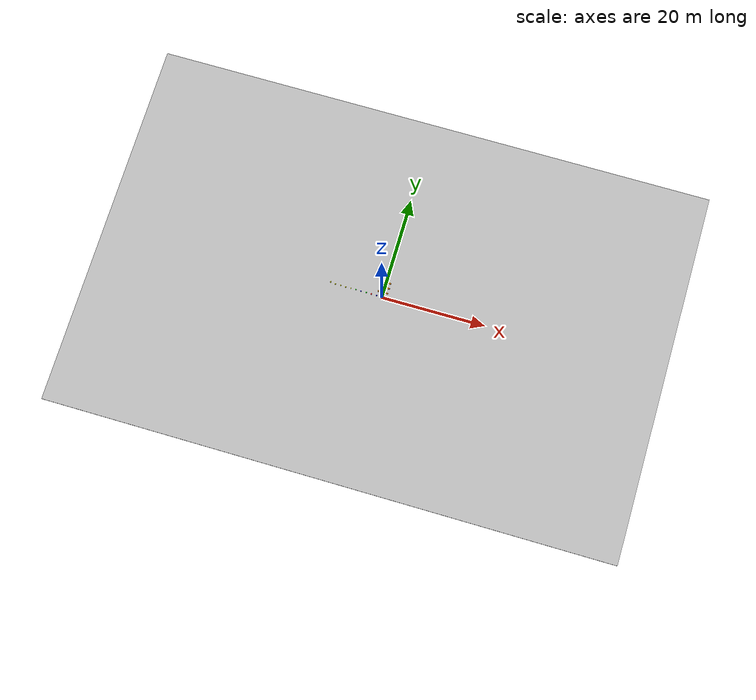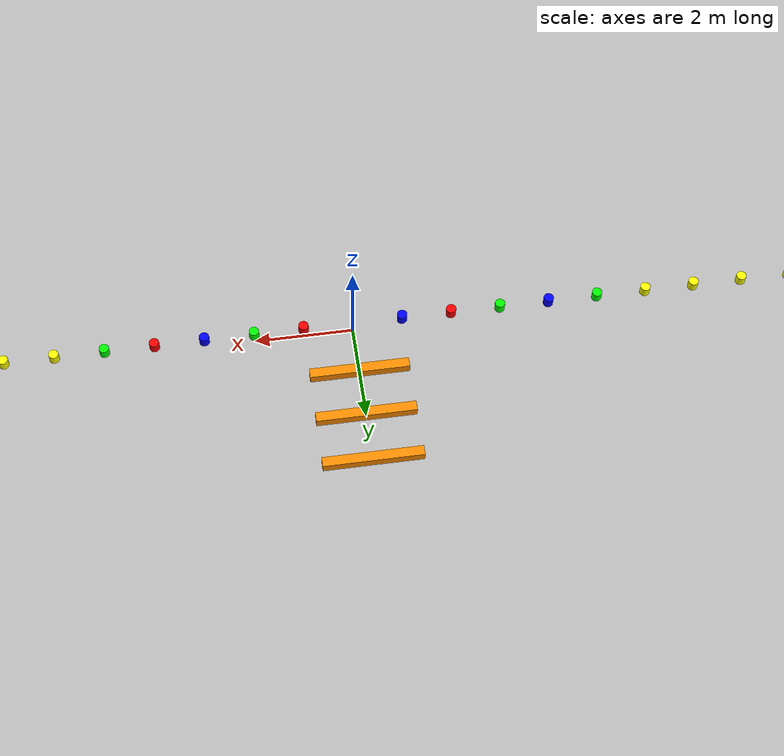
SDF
<sdf version="1.4">
 <world name="default">
  <physics type="ode">
   <max_step_size>0.001</max_step_size>
   <real_time_factor>1</real_time_factor>
   <real_time_update_rate>1000</real_time_update_rate>
   <gravity>0 0 -9.8</gravity>
  </physics>
  <spherical_coordinates>
   <surface_model>EARTH_WGS84</surface_model>
   <latitude_deg>24.4793194</latitude_deg>
   <longitude_deg>54.6105446</longitude_deg>
   <elevation>18</elevation>
   <heading_deg>0</heading_deg>
  </spherical_coordinates>
  <scene><sky><clouds><speed>12</speed></clouds></sky></scene>
  <include><uri>model://sun</uri></include>
  <light name="point_light_0" type="point">
   <pose>22.5 0 3 0 0 0</pose>
   <diffuse>0.5 0.5 0.5 1</diffuse>
   <specular>0.1 0.1 0.1 1</specular>
   <attenuation>
    <range>20</range>
    <constant>0.1</constant>
    <linear>0.1</linear>
    <quadratic>0.01</quadratic>
   </attenuation>
   <cast_shadows>0</cast_shadows>
   <direction>0 0 -1</direction>
  </light>
  <include><uri>model://arena</uri></include>
  <model name="small_cylinder_1">
   <pose>1 0 0.2 0 0 0</pose>
   <include><uri>model://small_cylinder_static_red</uri></include>
   <plugin name="mbzirc_gazebo_treasure_plugin_cylinder_1" filename="libmbzirc_gazebo_treasure_plugin.so">
    <staticObject>true</staticObject>
   </plugin>
  </model>
  <model name="small_cylinder_2">
   <pose>2 0 0.2 0 0 0</pose>
   <include><uri>model://small_cylinder_static_green</uri></include>
   <plugin name="mbzirc_gazebo_treasure_plugin_cylinder_2" filename="libmbzirc_gazebo_treasure_plugin.so">
    <staticObject>true</staticObject>
   </plugin>
  </model>
  <model name="small_cylinder_3">
   <pose>3 0 0.2 0 0 0</pose>
   <include><uri>model://small_cylinder_static_blue</uri></include>
   <plugin name="mbzirc_gazebo_treasure_plugin_cylinder_3" filename="libmbzirc_gazebo_treasure_plugin.so">
    <staticObject>true</staticObject>
   </plugin>
  </model>
  <model name="small_cylinder_4">
   <pose>4 0 0.2 0 0 0</pose>
   <include><uri>model://small_cylinder_static_red</uri></include>
   <plugin name="mbzirc_gazebo_treasure_plugin_cylinder_4" filename="libmbzirc_gazebo_treasure_plugin.so">
    <staticObject>true</staticObject>
   </plugin>
  </model>
  <model name="small_cylinder_5">
   <pose>5 0 0.2 0 0 0</pose>
   <include><uri>model://small_cylinder_static_green</uri></include>
   <plugin name="mbzirc_gazebo_treasure_plugin_cylinder_5" filename="libmbzirc_gazebo_treasure_plugin.so">
    <staticObject>true</staticObject>
   </plugin>
  </model>
  <model name="small_cylinder_6">
   <pose>-1 0 0.2 0 0 0</pose>
   <include><uri>model://small_cylinder_static_blue</uri></include>
   <plugin name="mbzirc_gazebo_treasure_plugin_cylinder_6" filename="libmbzirc_gazebo_treasure_plugin.so">
    <staticObject>true</staticObject>
   </plugin>
  </model>
  <model name="small_cylinder_7">
   <pose>-2 0 0.2 0 0 0</pose>
   <include><uri>model://small_cylinder_static_red</uri></include>
   <plugin name="mbzirc_gazebo_treasure_plugin_cylinder_7" filename="libmbzirc_gazebo_treasure_plugin.so">
    <staticObject>true</staticObject>
   </plugin>
  </model>
  <model name="small_cylinder_8">
   <pose>-3 0 0.2 0 0 0</pose>
   <include><uri>model://small_cylinder_static_green</uri></include>
   <plugin name="mbzirc_gazebo_treasure_plugin_cylinder_8" filename="libmbzirc_gazebo_treasure_plugin.so">
    <staticObject>true</staticObject>
   </plugin>
  </model>
  <model name="small_cylinder_9">
   <pose>-4 0 0.2 0 0 0</pose>
   <include><uri>model://small_cylinder_static_blue</uri></include>
   <plugin name="mbzirc_gazebo_treasure_plugin_cylinder_9" filename="libmbzirc_gazebo_treasure_plugin.so">
    <staticObject>true</staticObject>
   </plugin>
  </model>
  <model name="small_cylinder_10">
   <pose>-5 0 0.2 0 0 0</pose>
   <include><uri>model://small_cylinder_static_green</uri></include>
   <plugin name="mbzirc_gazebo_treasure_plugin_cylinder_10" filename="libmbzirc_gazebo_treasure_plugin.so">
    <staticObject>true</staticObject>
   </plugin>
  </model>
  <model name="small_cylinder_11">
   <pose>6 0 0.2 0 0 0</pose>
   <include><uri>model://small_cylinder_moving</uri></include>
   <plugin name="mbzirc_gazebo_treasure_plugin_cylinder_11" filename="libmbzirc_gazebo_treasure_plugin.so"/>
  </model>
  <model name="small_cylinder_12">
   <pose>7 0 0.2 0 0 0</pose>
   <include><uri>model://small_cylinder_moving</uri></include>
   <plugin name="mbzirc_gazebo_treasure_plugin_cylinder_12" filename="libmbzirc_gazebo_treasure_plugin.so"/>
  </model>
  <model name="small_cylinder_13">
   <pose>8 0 0.2 0 0 0</pose>
   <include><uri>model://small_cylinder_moving</uri></include>
   <plugin name="mbzirc_gazebo_treasure_plugin_cylinder_13" filename="libmbzirc_gazebo_treasure_plugin.so"/>
  </model>
  <model name="small_cylinder_14">
   <pose>9 0 0.2 0 0 0</pose>
   <include><uri>model://small_cylinder_moving</uri></include>
   <plugin name="mbzirc_gazebo_treasure_plugin_cylinder_14" filename="libmbzirc_gazebo_treasure_plugin.so"/>
  </model>
  <model name="small_cylinder_15">
   <pose>10 0 0.2 0 0 0</pose>
   <include><uri>model://small_cylinder_moving</uri></include>
   <plugin name="mbzirc_gazebo_treasure_plugin_cylinder_15" filename="libmbzirc_gazebo_treasure_plugin.so"/>
  </model>
  <model name="small_cylinder_16">
   <pose>-6 0 0.2 0 0 0</pose>
   <include><uri>model://small_cylinder_moving</uri></include>
   <plugin name="mbzirc_gazebo_treasure_plugin_cylinder_16" filename="libmbzirc_gazebo_treasure_plugin.so"/>
  </model>
  <model name="small_cylinder_17">
   <pose>-7 0 0.2 0 0 0</pose>
   <include><uri>model://small_cylinder_moving</uri></include>
   <plugin name="mbzirc_gazebo_treasure_plugin_cylinder_17" filename="libmbzirc_gazebo_treasure_plugin.so"/>
  </model>
  <model name="small_cylinder_18">
   <pose>-8 0 0.2 0 0 0</pose>
   <include><uri>model://small_cylinder_moving</uri></include>
   <plugin name="mbzirc_gazebo_treasure_plugin_cylinder_18" filename="libmbzirc_gazebo_treasure_plugin.so"/>
  </model>
  <model name="small_cylinder_19">
   <pose>-9 0 0.2 0 0 0</pose>
   <include><uri>model://small_cylinder_moving</uri></include>
   <plugin name="mbzirc_gazebo_treasure_plugin_cylinder_19" filename="libmbzirc_gazebo_treasure_plugin.so"/>
  </model>
  <model name="small_cylinder_20">
   <pose>-10 0.2 0 0 0 0</pose>
   <include><uri>model://small_cylinder_moving</uri></include>
   <plugin name="mbzirc_gazebo_treasure_plugin_cylinder_20" filename="libmbzirc_gazebo_treasure_plugin.so"/>
  </model>
  <model name="large_object_1">
   <pose>0 1 0 0 0 0</pose>
   <include><uri>model://large_object</uri></include>
   <plugin name="mbzirc_gazebo_treasure_plugin_large_1" filename="libmbzirc_gazebo_treasure_plugin.so">
    <staticObject>true</staticObject>
   </plugin>
  </model>
  <model name="large_object_2">
   <pose>0 2 0 0 0 0</pose>
   <include><uri>model://large_object</uri></include>
   <plugin name="mbzirc_gazebo_treasure_plugin_large_2" filename="libmbzirc_gazebo_treasure_plugin.so">
    <staticObject>true</staticObject>
   </plugin>
  </model>
  <model name="large_object_3">
   <pose>0 3 0 0 0 0</pose>
   <include><uri>model://large_object</uri></include>
   <plugin name="mbzirc_gazebo_treasure_plugin_large_3" filename="libmbzirc_gazebo_treasure_plugin.so">
    <staticObject>true</staticObject>
   </plugin>
  </model>
 </world>
</sdf>

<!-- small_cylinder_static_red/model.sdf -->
<sdf version='1.4'>
  <model name="small_cylinder_static_red">
    <link name="link" >
      <pose>0 0 0.1 0 0 0</pose>
      <inertial>
        <mass>0.5</mass>
        <inertia>
          <!-- http://answers.gazebosim.org/question/4372/the-inertia-matrix-explained/ -->
          <ixx>0.005914</ixx>    <!-- for a box: ixx = 0.083 * mass * (3*r*r + h*h) -->
          <ixy>0.0</ixy>         <!-- for a box: ixy = 0 -->
          <ixz>0.0</ixz>         <!-- for a box: ixz = 0 -->
          <iyy>0.005914</iyy>    <!-- for a box: iyy = 0.083 * mass * (3*r*r + h*h) -->
          <iyz>0.0</iyz>         <!-- for a box: iyz = 0 -->
          <izz>0.010000</izz>    <!-- for a box: izz = 0.5 * mass * (r*r) -->
        </inertia>
      </inertial>
      <collision name="collision">
        <geometry>
          <cylinder>
            <length>0.2</length>
            <radius>0.1</radius>
          </cylinder>
        </geometry>
      </collision>
      <visual name="visual">
        <geometry>
          <cylinder>
            <length>0.2</length>
            <radius>0.1</radius>
          </cylinder>
        </geometry>
        <material>
          <ambient>1.00 0 0 1</ambient> <!-- red -->
          <diffuse>1.00 0 0 1</diffuse>
          <specular>0.1 0.1 0.1 1</specular>
          <emissive>0 0 0 0</emissive>
        </material>
      </visual>
    </link>
  </model>
</sdf>

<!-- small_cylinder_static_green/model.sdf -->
<sdf version='1.4'>
  <model name="small_cylinder_static_green">
    <link name="link" >
      <pose>0 0 0.1 0 0 0</pose>
      <inertial>
        <mass>0.5</mass>
        <inertia>
          <!-- http://answers.gazebosim.org/question/4372/the-inertia-matrix-explained/ -->
          <ixx>0.005914</ixx>    <!-- for a box: ixx = 0.083 * mass * (3*r*r + h*h) -->
          <ixy>0.0</ixy>         <!-- for a box: ixy = 0 -->
          <ixz>0.0</ixz>         <!-- for a box: ixz = 0 -->
          <iyy>0.005914</iyy>    <!-- for a box: iyy = 0.083 * mass * (3*r*r + h*h) -->
          <iyz>0.0</iyz>         <!-- for a box: iyz = 0 -->
          <izz>0.010000</izz>    <!-- for a box: izz = 0.5 * mass * (r*r) -->
        </inertia>
      </inertial>
      <collision name="collision">
        <geometry>
          <cylinder>
            <length>0.2</length>
            <radius>0.1</radius>
          </cylinder>
        </geometry>
      </collision>
      <visual name="visual">
        <geometry>
          <cylinder>
            <length>0.2</length>
            <radius>0.1</radius>
          </cylinder>
        </geometry>
        <material>
          <ambient>0 1 0 1</ambient> <!-- green -->
          <diffuse>0 1 0 1</diffuse>
          <specular>0.1 0.1 0.1 1</specular>
          <emissive>0 0 0 0</emissive>
        </material>
      </visual>
    </link>
  </model>
</sdf>

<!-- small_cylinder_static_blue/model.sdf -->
<sdf version='1.4'>
  <model name="small_cylinder_static_blue">
    <link name="link" >
      <pose>0 0 0.1 0 0 0</pose>
      <inertial>
        <mass>0.5</mass>
        <inertia>
          <!-- http://answers.gazebosim.org/question/4372/the-inertia-matrix-explained/ -->
          <ixx>0.005914</ixx>    <!-- for a box: ixx = 0.083 * mass * (3*r*r + h*h) -->
          <ixy>0.0</ixy>         <!-- for a box: ixy = 0 -->
          <ixz>0.0</ixz>         <!-- for a box: ixz = 0 -->
          <iyy>0.005914</iyy>    <!-- for a box: iyy = 0.083 * mass * (3*r*r + h*h) -->
          <iyz>0.0</iyz>         <!-- for a box: iyz = 0 -->
          <izz>0.010000</izz>    <!-- for a box: izz = 0.5 * mass * (r*r) -->
        </inertia>
      </inertial>
      <collision name="collision">
        <geometry>
          <cylinder>
            <length>0.2</length>
            <radius>0.1</radius>
          </cylinder>
        </geometry>
      </collision>
      <visual name="visual">
        <geometry>
          <cylinder>
            <length>0.2</length>
            <radius>0.1</radius>
          </cylinder>
        </geometry>
        <material>
          <ambient>0 0 1 1</ambient> <!-- Blue -->
          <diffuse>0 0 1 1</diffuse>
          <specular>0.1 0.1 0.1 1</specular>
          <emissive>0 0 0 0</emissive>
        </material>
      </visual>
    </link>
  </model>
</sdf>

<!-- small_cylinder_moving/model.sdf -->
<sdf version='1.4'>
  <model name="small_cylinder_moving">
    <link name="link" >
      <pose>0 0 0.1 0 0 0</pose>
      <inertial>
        <mass>0.5</mass>
        <inertia>
          <!-- http://answers.gazebosim.org/question/4372/the-inertia-matrix-explained/ -->
          <ixx>0.005914</ixx>    <!-- for a box: ixx = 0.083 * mass * (3*r*r + h*h) -->
          <ixy>0.0</ixy>         <!-- for a box: ixy = 0 -->
          <ixz>0.0</ixz>         <!-- for a box: ixz = 0 -->
          <iyy>0.005914</iyy>    <!-- for a box: iyy = 0.083 * mass * (3*r*r + h*h) -->
          <iyz>0.0</iyz>         <!-- for a box: iyz = 0 -->
          <izz>0.010000</izz>    <!-- for a box: izz = 0.5 * mass * (r*r) -->
        </inertia>
      </inertial>
      <collision name="collision">
        <geometry>
          <cylinder>
            <length>0.2</length>
            <radius>0.1</radius>
          </cylinder>
        </geometry>
      </collision>
      <visual name="visual">
        <geometry>
          <cylinder>
            <length>0.2</length>
            <radius>0.1</radius>
          </cylinder>
        </geometry>
        <material>
          <ambient>1.00 1 0 1</ambient> <!-- orange -->
          <diffuse>1.00 1 0 1</diffuse>
          <specular>0.1 0.1 0.1 1</specular>
          <emissive>0 0 0 0</emissive>
        </material>
      </visual>
    </link>
  </model>
</sdf>

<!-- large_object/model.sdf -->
<sdf version='1.4'>
  <model name="large_object">
    <link name="link" >
      <pose>0 0 0.1 0 0 0</pose>
      <inertial>
        <mass>2.0</mass>
        <inertia>
          <!-- http://answers.gazebosim.org/question/4372/the-inertia-matrix-explained/ -->
          <ixx>0.01328</ixx>    <!-- for a box: ixx = 0.083 * mass * (y*y + z*z) -->
          <ixy>0.0</ixy>        <!-- for a box: ixy = 0 -->
          <ixz>0.0</ixz>        <!-- for a box: ixz = 0 -->
          <iyy>0.67064</iyy>    <!-- for a box: iyy = 0.083 * mass * (x*x + z*z) -->
          <iyz>0.0</iyz>        <!-- for a box: iyz = 0 -->
          <izz>0.67064</izz>    <!-- for a box: izz = 0.083 * mass * (x*x + y*y) -->
        </inertia>
      </inertial>
      <collision name="collision">
        <geometry>
          <box>
            <size>2.0 0.2 0.2</size>
          </box>
        </geometry>
      </collision>
      <visual name="visual">
        <geometry>
          <box>
            <size>2.0 0.2 0.2</size>
          </box>
        </geometry>
        <material>
          <ambient>1 0.549 0 1</ambient> <!-- dark Orange -->
          <diffuse>1 0.549 0 1</diffuse>
          <specular>0.1 0.1 0.1 1</specular>
          <emissive>0 0 0 0</emissive>
        </material>
      </visual>
    </link>
  </model>
</sdf>

255-140-0

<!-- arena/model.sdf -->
<sdf version="1.4">
  <model name="arena">
    <static>true</static>
    <link name="link_arena">
      <pose>0 0 -0.04 0 0 1.5708</pose>
      <collision name="collision">
        <geometry>
          <box>
            <size>72.63 108.945 .1</size>
          </box>
        </geometry>
      </collision>
      <visual name="visual">
        <transparency>0.0001</transparency>
        <cast_shadows>false</cast_shadows>
        <geometry>
          <box>
            <size>72.63 108.945 .1</size>
          </box>
        </geometry>
        <material>
          <script>
            <uri>model://arena/materials/scripts</uri>
            <uri>model://arena/materials/textures</uri>
            <name>vrc/arena</name>
          </script>
        </material>
      </visual>
    </link>

    <static>true</static>
    <link name="link_asphalt">
      <pose>0 0 -0.04 0 0 1.5708</pose>
      <collision name="collision">
        <geometry>
          <box>
            <size>72.63 108.945 .1</size>
          </box>
        </geometry>
      </collision>
      <visual name="visual">
        <cast_shadows>false</cast_shadows>
        <geometry>
          <box>
            <size>72.63 108.945 .1</size>
          </box>
        </geometry>
        <material>
          <script>
            <uri>model://arena/materials/scripts</uri>
            <uri>model://arena/materials/textures</uri>
            <name>vrc/asphalt</name>
          </script>
        </material>
      </visual>
    </link>
  </model>

  <model name="arena_pathless">
    <static>true</static>
    <link name="link_arena">
      <pose>0 0 -0.04 0 0 1.5708</pose>
      <collision name="collision">
        <geometry>
          <box>
            <size>72.63 108.945 .1</size>
          </box>
        </geometry>
      </collision>
      <visual name="visual">
        <transparency>0.0001</transparency>
        <cast_shadows>false</cast_shadows>
        <geometry>
          <box>
            <size>72.63 108.945 .1</size>
          </box>
        </geometry>
        <material>
          <script>
            <uri>model://arena/materials/scripts</uri>
            <uri>model://arena/materials/textures</uri>
            <name>vrc/arena_pathless</name>
          </script>
        </material>
      </visual>
    </link>

    <static>true</static>
    <link name="link_asphalt">
      <pose>0 0 -0.04 0 0 1.5708</pose>
      <collision name="collision">
        <geometry>
          <box>
            <size>72.63 108.945 .1</size>
          </box>
        </geometry>
      </collision>
      <visual name="visual">
        <cast_shadows>false</cast_shadows>
        <geometry>
          <box>
            <size>72.63 108.945 .1</size>
          </box>
        </geometry>
        <material>
          <script>
            <uri>model://arena/materials/scripts</uri>
            <uri>model://arena/materials/textures</uri>
            <name>vrc/asphalt</name>
          </script>
        </material>
      </visual>
    </link>
  </model>
</sdf>
